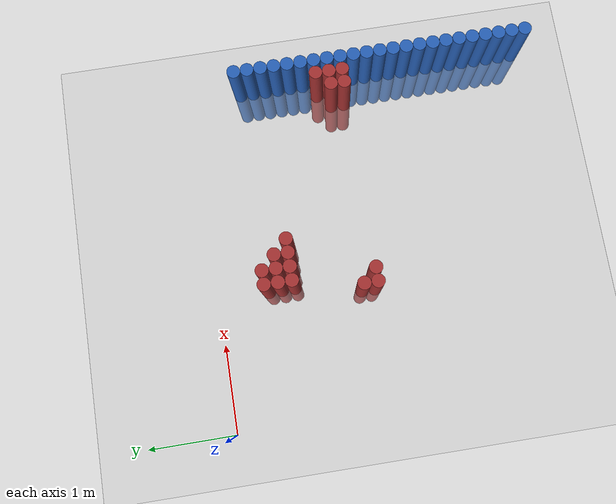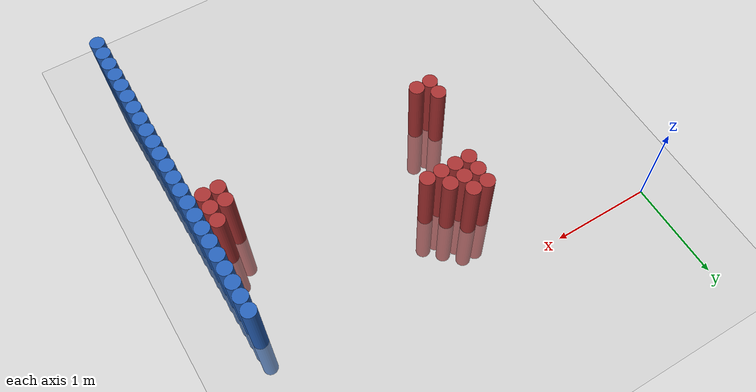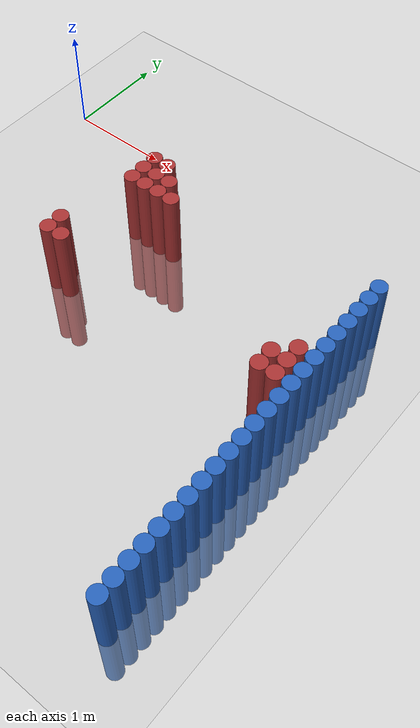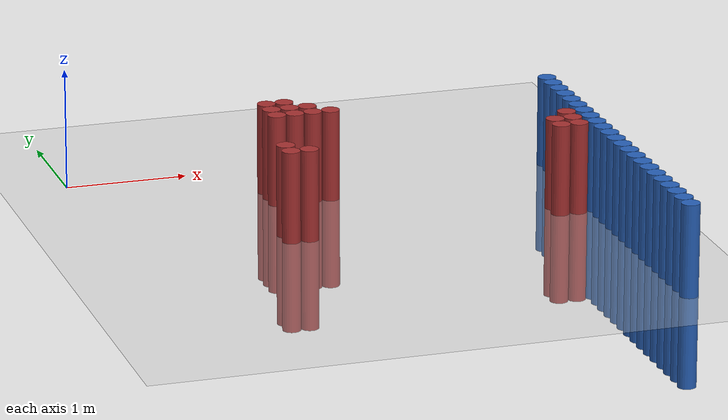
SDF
<sdf version="1.6">
 <world name="default">
  <model name="ground_plane">
   <static>1</static>
   <link name="link">
    <collision name="collision">
     <geometry><plane><normal>0 0 1</normal><size>100 100</size></plane></geometry>
     <surface><friction><ode><mu>100</mu><mu2>50</mu2></ode></friction></surface>
    </collision>
    <visual name="visual">
     <cast_shadows>0</cast_shadows>
     <geometry><plane><normal>0 0 1</normal><size>100 100</size></plane></geometry>
     <material>
      <script><uri>file://media/materials/scripts/gazebo.material</uri><name>Gazebo/Grey</name></script>
     </material>
    </visual>
   </link>
  </model>
  <model name="unit_cylinder_62">
   <static>1</static>
   <pose>3.925000 -3.875000 0.000000 0.000000 0.000000 0.000000</pose>
   <link name="link">
    <inertial>
     <mass>1</mass>
     <inertia><ixx>0.145833</ixx><ixy>0</ixy><ixz>0</ixz><iyy>0.145833</iyy><iyz>0</iyz><izz>0.125</izz></inertia>
    </inertial>
    <collision name="collision">
     <geometry><cylinder><radius>0.075000</radius><length>1.5</length></cylinder></geometry>
    </collision>
    <visual name="visual">
     <geometry><cylinder><radius>0.075000</radius><length>1.5</length></cylinder></geometry>
     <material>
      <ambient>0.152000 0.379000 0.720000 1</ambient>
      <diffuse>0.152000 0.379000 0.720000 1</diffuse>
     </material>
     <material>
      <script><name>Gazebo/Grey</name><uri>file://media/materials/scripts/gazebo.material</uri></script>
     </material>
    </visual>
   </link>
  </model>
  <model name="unit_cylinder_64">
   <static>1</static>
   <pose>3.925000 -3.725000 0.000000 0.000000 0.000000 0.000000</pose>
   <link name="link">
    <inertial>
     <mass>1</mass>
     <inertia><ixx>0.145833</ixx><ixy>0</ixy><ixz>0</ixz><iyy>0.145833</iyy><iyz>0</iyz><izz>0.125</izz></inertia>
    </inertial>
    <collision name="collision">
     <geometry><cylinder><radius>0.075000</radius><length>1.5</length></cylinder></geometry>
    </collision>
    <visual name="visual">
     <geometry><cylinder><radius>0.075000</radius><length>1.5</length></cylinder></geometry>
     <material>
      <ambient>0.152000 0.379000 0.720000 1</ambient>
      <diffuse>0.152000 0.379000 0.720000 1</diffuse>
     </material>
     <material>
      <script><name>Gazebo/Grey</name><uri>file://media/materials/scripts/gazebo.material</uri></script>
     </material>
    </visual>
   </link>
  </model>
  <model name="unit_cylinder_66">
   <static>1</static>
   <pose>3.925000 -3.575000 0.000000 0.000000 0.000000 0.000000</pose>
   <link name="link">
    <inertial>
     <mass>1</mass>
     <inertia><ixx>0.145833</ixx><ixy>0</ixy><ixz>0</ixz><iyy>0.145833</iyy><iyz>0</iyz><izz>0.125</izz></inertia>
    </inertial>
    <collision name="collision">
     <geometry><cylinder><radius>0.075000</radius><length>1.5</length></cylinder></geometry>
    </collision>
    <visual name="visual">
     <geometry><cylinder><radius>0.075000</radius><length>1.5</length></cylinder></geometry>
     <material>
      <ambient>0.152000 0.379000 0.720000 1</ambient>
      <diffuse>0.152000 0.379000 0.720000 1</diffuse>
     </material>
     <material>
      <script><name>Gazebo/Grey</name><uri>file://media/materials/scripts/gazebo.material</uri></script>
     </material>
    </visual>
   </link>
  </model>
  <model name="unit_cylinder_68">
   <static>1</static>
   <pose>3.925000 -3.425000 0.000000 0.000000 0.000000 0.000000</pose>
   <link name="link">
    <inertial>
     <mass>1</mass>
     <inertia><ixx>0.145833</ixx><ixy>0</ixy><ixz>0</ixz><iyy>0.145833</iyy><iyz>0</iyz><izz>0.125</izz></inertia>
    </inertial>
    <collision name="collision">
     <geometry><cylinder><radius>0.075000</radius><length>1.5</length></cylinder></geometry>
    </collision>
    <visual name="visual">
     <geometry><cylinder><radius>0.075000</radius><length>1.5</length></cylinder></geometry>
     <material>
      <ambient>0.152000 0.379000 0.720000 1</ambient>
      <diffuse>0.152000 0.379000 0.720000 1</diffuse>
     </material>
     <material>
      <script><name>Gazebo/Grey</name><uri>file://media/materials/scripts/gazebo.material</uri></script>
     </material>
    </visual>
   </link>
  </model>
  <model name="unit_cylinder_70">
   <static>1</static>
   <pose>3.925000 -3.275000 0.000000 0.000000 0.000000 0.000000</pose>
   <link name="link">
    <inertial>
     <mass>1</mass>
     <inertia><ixx>0.145833</ixx><ixy>0</ixy><ixz>0</ixz><iyy>0.145833</iyy><iyz>0</iyz><izz>0.125</izz></inertia>
    </inertial>
    <collision name="collision">
     <geometry><cylinder><radius>0.075000</radius><length>1.5</length></cylinder></geometry>
    </collision>
    <visual name="visual">
     <geometry><cylinder><radius>0.075000</radius><length>1.5</length></cylinder></geometry>
     <material>
      <ambient>0.152000 0.379000 0.720000 1</ambient>
      <diffuse>0.152000 0.379000 0.720000 1</diffuse>
     </material>
     <material>
      <script><name>Gazebo/Grey</name><uri>file://media/materials/scripts/gazebo.material</uri></script>
     </material>
    </visual>
   </link>
  </model>
  <model name="unit_cylinder_72">
   <static>1</static>
   <pose>3.925000 -3.125000 0.000000 0.000000 0.000000 0.000000</pose>
   <link name="link">
    <inertial>
     <mass>1</mass>
     <inertia><ixx>0.145833</ixx><ixy>0</ixy><ixz>0</ixz><iyy>0.145833</iyy><iyz>0</iyz><izz>0.125</izz></inertia>
    </inertial>
    <collision name="collision">
     <geometry><cylinder><radius>0.075000</radius><length>1.5</length></cylinder></geometry>
    </collision>
    <visual name="visual">
     <geometry><cylinder><radius>0.075000</radius><length>1.5</length></cylinder></geometry>
     <material>
      <ambient>0.152000 0.379000 0.720000 1</ambient>
      <diffuse>0.152000 0.379000 0.720000 1</diffuse>
     </material>
     <material>
      <script><name>Gazebo/Grey</name><uri>file://media/materials/scripts/gazebo.material</uri></script>
     </material>
    </visual>
   </link>
  </model>
  <model name="unit_cylinder_74">
   <static>1</static>
   <pose>3.925000 -2.975000 0.000000 0.000000 0.000000 0.000000</pose>
   <link name="link">
    <inertial>
     <mass>1</mass>
     <inertia><ixx>0.145833</ixx><ixy>0</ixy><ixz>0</ixz><iyy>0.145833</iyy><iyz>0</iyz><izz>0.125</izz></inertia>
    </inertial>
    <collision name="collision">
     <geometry><cylinder><radius>0.075000</radius><length>1.5</length></cylinder></geometry>
    </collision>
    <visual name="visual">
     <geometry><cylinder><radius>0.075000</radius><length>1.5</length></cylinder></geometry>
     <material>
      <ambient>0.152000 0.379000 0.720000 1</ambient>
      <diffuse>0.152000 0.379000 0.720000 1</diffuse>
     </material>
     <material>
      <script><name>Gazebo/Grey</name><uri>file://media/materials/scripts/gazebo.material</uri></script>
     </material>
    </visual>
   </link>
  </model>
  <model name="unit_cylinder_76">
   <static>1</static>
   <pose>3.925000 -2.825000 0.000000 0.000000 0.000000 0.000000</pose>
   <link name="link">
    <inertial>
     <mass>1</mass>
     <inertia><ixx>0.145833</ixx><ixy>0</ixy><ixz>0</ixz><iyy>0.145833</iyy><iyz>0</iyz><izz>0.125</izz></inertia>
    </inertial>
    <collision name="collision">
     <geometry><cylinder><radius>0.075000</radius><length>1.5</length></cylinder></geometry>
    </collision>
    <visual name="visual">
     <geometry><cylinder><radius>0.075000</radius><length>1.5</length></cylinder></geometry>
     <material>
      <ambient>0.152000 0.379000 0.720000 1</ambient>
      <diffuse>0.152000 0.379000 0.720000 1</diffuse>
     </material>
     <material>
      <script><name>Gazebo/Grey</name><uri>file://media/materials/scripts/gazebo.material</uri></script>
     </material>
    </visual>
   </link>
  </model>
  <model name="unit_cylinder_78">
   <static>1</static>
   <pose>3.925000 -2.675000 0.000000 0.000000 0.000000 0.000000</pose>
   <link name="link">
    <inertial>
     <mass>1</mass>
     <inertia><ixx>0.145833</ixx><ixy>0</ixy><ixz>0</ixz><iyy>0.145833</iyy><iyz>0</iyz><izz>0.125</izz></inertia>
    </inertial>
    <collision name="collision">
     <geometry><cylinder><radius>0.075000</radius><length>1.5</length></cylinder></geometry>
    </collision>
    <visual name="visual">
     <geometry><cylinder><radius>0.075000</radius><length>1.5</length></cylinder></geometry>
     <material>
      <ambient>0.152000 0.379000 0.720000 1</ambient>
      <diffuse>0.152000 0.379000 0.720000 1</diffuse>
     </material>
     <material>
      <script><name>Gazebo/Grey</name><uri>file://media/materials/scripts/gazebo.material</uri></script>
     </material>
    </visual>
   </link>
  </model>
  <model name="unit_cylinder_80">
   <static>1</static>
   <pose>3.925000 -2.525000 0.000000 0.000000 0.000000 0.000000</pose>
   <link name="link">
    <inertial>
     <mass>1</mass>
     <inertia><ixx>0.145833</ixx><ixy>0</ixy><ixz>0</ixz><iyy>0.145833</iyy><iyz>0</iyz><izz>0.125</izz></inertia>
    </inertial>
    <collision name="collision">
     <geometry><cylinder><radius>0.075000</radius><length>1.5</length></cylinder></geometry>
    </collision>
    <visual name="visual">
     <geometry><cylinder><radius>0.075000</radius><length>1.5</length></cylinder></geometry>
     <material>
      <ambient>0.152000 0.379000 0.720000 1</ambient>
      <diffuse>0.152000 0.379000 0.720000 1</diffuse>
     </material>
     <material>
      <script><name>Gazebo/Grey</name><uri>file://media/materials/scripts/gazebo.material</uri></script>
     </material>
    </visual>
   </link>
  </model>
  <model name="unit_cylinder_82">
   <static>1</static>
   <pose>3.925000 -2.375000 0.000000 0.000000 0.000000 0.000000</pose>
   <link name="link">
    <inertial>
     <mass>1</mass>
     <inertia><ixx>0.145833</ixx><ixy>0</ixy><ixz>0</ixz><iyy>0.145833</iyy><iyz>0</iyz><izz>0.125</izz></inertia>
    </inertial>
    <collision name="collision">
     <geometry><cylinder><radius>0.075000</radius><length>1.5</length></cylinder></geometry>
    </collision>
    <visual name="visual">
     <geometry><cylinder><radius>0.075000</radius><length>1.5</length></cylinder></geometry>
     <material>
      <ambient>0.152000 0.379000 0.720000 1</ambient>
      <diffuse>0.152000 0.379000 0.720000 1</diffuse>
     </material>
     <material>
      <script><name>Gazebo/Grey</name><uri>file://media/materials/scripts/gazebo.material</uri></script>
     </material>
    </visual>
   </link>
  </model>
  <model name="unit_cylinder_84">
   <static>1</static>
   <pose>3.925000 -2.225000 0.000000 0.000000 0.000000 0.000000</pose>
   <link name="link">
    <inertial>
     <mass>1</mass>
     <inertia><ixx>0.145833</ixx><ixy>0</ixy><ixz>0</ixz><iyy>0.145833</iyy><iyz>0</iyz><izz>0.125</izz></inertia>
    </inertial>
    <collision name="collision">
     <geometry><cylinder><radius>0.075000</radius><length>1.5</length></cylinder></geometry>
    </collision>
    <visual name="visual">
     <geometry><cylinder><radius>0.075000</radius><length>1.5</length></cylinder></geometry>
     <material>
      <ambient>0.152000 0.379000 0.720000 1</ambient>
      <diffuse>0.152000 0.379000 0.720000 1</diffuse>
     </material>
     <material>
      <script><name>Gazebo/Grey</name><uri>file://media/materials/scripts/gazebo.material</uri></script>
     </material>
    </visual>
   </link>
  </model>
  <model name="unit_cylinder_86">
   <static>1</static>
   <pose>3.925000 -2.075000 0.000000 0.000000 0.000000 0.000000</pose>
   <link name="link">
    <inertial>
     <mass>1</mass>
     <inertia><ixx>0.145833</ixx><ixy>0</ixy><ixz>0</ixz><iyy>0.145833</iyy><iyz>0</iyz><izz>0.125</izz></inertia>
    </inertial>
    <collision name="collision">
     <geometry><cylinder><radius>0.075000</radius><length>1.5</length></cylinder></geometry>
    </collision>
    <visual name="visual">
     <geometry><cylinder><radius>0.075000</radius><length>1.5</length></cylinder></geometry>
     <material>
      <ambient>0.152000 0.379000 0.720000 1</ambient>
      <diffuse>0.152000 0.379000 0.720000 1</diffuse>
     </material>
     <material>
      <script><name>Gazebo/Grey</name><uri>file://media/materials/scripts/gazebo.material</uri></script>
     </material>
    </visual>
   </link>
  </model>
  <model name="unit_cylinder_88">
   <static>1</static>
   <pose>3.925000 -1.925000 0.000000 0.000000 0.000000 0.000000</pose>
   <link name="link">
    <inertial>
     <mass>1</mass>
     <inertia><ixx>0.145833</ixx><ixy>0</ixy><ixz>0</ixz><iyy>0.145833</iyy><iyz>0</iyz><izz>0.125</izz></inertia>
    </inertial>
    <collision name="collision">
     <geometry><cylinder><radius>0.075000</radius><length>1.5</length></cylinder></geometry>
    </collision>
    <visual name="visual">
     <geometry><cylinder><radius>0.075000</radius><length>1.5</length></cylinder></geometry>
     <material>
      <ambient>0.152000 0.379000 0.720000 1</ambient>
      <diffuse>0.152000 0.379000 0.720000 1</diffuse>
     </material>
     <material>
      <script><name>Gazebo/Grey</name><uri>file://media/materials/scripts/gazebo.material</uri></script>
     </material>
    </visual>
   </link>
  </model>
  <model name="unit_cylinder_90">
   <static>1</static>
   <pose>3.925000 -1.775000 0.000000 0.000000 0.000000 0.000000</pose>
   <link name="link">
    <inertial>
     <mass>1</mass>
     <inertia><ixx>0.145833</ixx><ixy>0</ixy><ixz>0</ixz><iyy>0.145833</iyy><iyz>0</iyz><izz>0.125</izz></inertia>
    </inertial>
    <collision name="collision">
     <geometry><cylinder><radius>0.075000</radius><length>1.5</length></cylinder></geometry>
    </collision>
    <visual name="visual">
     <geometry><cylinder><radius>0.075000</radius><length>1.5</length></cylinder></geometry>
     <material>
      <ambient>0.152000 0.379000 0.720000 1</ambient>
      <diffuse>0.152000 0.379000 0.720000 1</diffuse>
     </material>
     <material>
      <script><name>Gazebo/Grey</name><uri>file://media/materials/scripts/gazebo.material</uri></script>
     </material>
    </visual>
   </link>
  </model>
  <model name="unit_cylinder_92">
   <static>1</static>
   <pose>3.925000 -1.625000 0.000000 0.000000 0.000000 0.000000</pose>
   <link name="link">
    <inertial>
     <mass>1</mass>
     <inertia><ixx>0.145833</ixx><ixy>0</ixy><ixz>0</ixz><iyy>0.145833</iyy><iyz>0</iyz><izz>0.125</izz></inertia>
    </inertial>
    <collision name="collision">
     <geometry><cylinder><radius>0.075000</radius><length>1.5</length></cylinder></geometry>
    </collision>
    <visual name="visual">
     <geometry><cylinder><radius>0.075000</radius><length>1.5</length></cylinder></geometry>
     <material>
      <ambient>0.152000 0.379000 0.720000 1</ambient>
      <diffuse>0.152000 0.379000 0.720000 1</diffuse>
     </material>
     <material>
      <script><name>Gazebo/Grey</name><uri>file://media/materials/scripts/gazebo.material</uri></script>
     </material>
    </visual>
   </link>
  </model>
  <model name="unit_cylinder_94">
   <static>1</static>
   <pose>3.925000 -1.475000 0.000000 0.000000 0.000000 0.000000</pose>
   <link name="link">
    <inertial>
     <mass>1</mass>
     <inertia><ixx>0.145833</ixx><ixy>0</ixy><ixz>0</ixz><iyy>0.145833</iyy><iyz>0</iyz><izz>0.125</izz></inertia>
    </inertial>
    <collision name="collision">
     <geometry><cylinder><radius>0.075000</radius><length>1.5</length></cylinder></geometry>
    </collision>
    <visual name="visual">
     <geometry><cylinder><radius>0.075000</radius><length>1.5</length></cylinder></geometry>
     <material>
      <ambient>0.152000 0.379000 0.720000 1</ambient>
      <diffuse>0.152000 0.379000 0.720000 1</diffuse>
     </material>
     <material>
      <script><name>Gazebo/Grey</name><uri>file://media/materials/scripts/gazebo.material</uri></script>
     </material>
    </visual>
   </link>
  </model>
  <model name="unit_cylinder_96">
   <static>1</static>
   <pose>3.925000 -1.325000 0.000000 0.000000 0.000000 0.000000</pose>
   <link name="link">
    <inertial>
     <mass>1</mass>
     <inertia><ixx>0.145833</ixx><ixy>0</ixy><ixz>0</ixz><iyy>0.145833</iyy><iyz>0</iyz><izz>0.125</izz></inertia>
    </inertial>
    <collision name="collision">
     <geometry><cylinder><radius>0.075000</radius><length>1.5</length></cylinder></geometry>
    </collision>
    <visual name="visual">
     <geometry><cylinder><radius>0.075000</radius><length>1.5</length></cylinder></geometry>
     <material>
      <ambient>0.152000 0.379000 0.720000 1</ambient>
      <diffuse>0.152000 0.379000 0.720000 1</diffuse>
     </material>
     <material>
      <script><name>Gazebo/Grey</name><uri>file://media/materials/scripts/gazebo.material</uri></script>
     </material>
    </visual>
   </link>
  </model>
  <model name="unit_cylinder_98">
   <static>1</static>
   <pose>3.925000 -1.175000 0.000000 0.000000 0.000000 0.000000</pose>
   <link name="link">
    <inertial>
     <mass>1</mass>
     <inertia><ixx>0.145833</ixx><ixy>0</ixy><ixz>0</ixz><iyy>0.145833</iyy><iyz>0</iyz><izz>0.125</izz></inertia>
    </inertial>
    <collision name="collision">
     <geometry><cylinder><radius>0.075000</radius><length>1.5</length></cylinder></geometry>
    </collision>
    <visual name="visual">
     <geometry><cylinder><radius>0.075000</radius><length>1.5</length></cylinder></geometry>
     <material>
      <ambient>0.152000 0.379000 0.720000 1</ambient>
      <diffuse>0.152000 0.379000 0.720000 1</diffuse>
     </material>
     <material>
      <script><name>Gazebo/Grey</name><uri>file://media/materials/scripts/gazebo.material</uri></script>
     </material>
    </visual>
   </link>
  </model>
  <model name="unit_cylinder_100">
   <static>1</static>
   <pose>3.925000 -1.025000 0.000000 0.000000 0.000000 0.000000</pose>
   <link name="link">
    <inertial>
     <mass>1</mass>
     <inertia><ixx>0.145833</ixx><ixy>0</ixy><ixz>0</ixz><iyy>0.145833</iyy><iyz>0</iyz><izz>0.125</izz></inertia>
    </inertial>
    <collision name="collision">
     <geometry><cylinder><radius>0.075000</radius><length>1.5</length></cylinder></geometry>
    </collision>
    <visual name="visual">
     <geometry><cylinder><radius>0.075000</radius><length>1.5</length></cylinder></geometry>
     <material>
      <ambient>0.152000 0.379000 0.720000 1</ambient>
      <diffuse>0.152000 0.379000 0.720000 1</diffuse>
     </material>
     <material>
      <script><name>Gazebo/Grey</name><uri>file://media/materials/scripts/gazebo.material</uri></script>
     </material>
    </visual>
   </link>
  </model>
  <model name="unit_cylinder_102">
   <static>1</static>
   <pose>3.925000 -0.875000 0.000000 0.000000 0.000000 0.000000</pose>
   <link name="link">
    <inertial>
     <mass>1</mass>
     <inertia><ixx>0.145833</ixx><ixy>0</ixy><ixz>0</ixz><iyy>0.145833</iyy><iyz>0</iyz><izz>0.125</izz></inertia>
    </inertial>
    <collision name="collision">
     <geometry><cylinder><radius>0.075000</radius><length>1.5</length></cylinder></geometry>
    </collision>
    <visual name="visual">
     <geometry><cylinder><radius>0.075000</radius><length>1.5</length></cylinder></geometry>
     <material>
      <ambient>0.152000 0.379000 0.720000 1</ambient>
      <diffuse>0.152000 0.379000 0.720000 1</diffuse>
     </material>
     <material>
      <script><name>Gazebo/Grey</name><uri>file://media/materials/scripts/gazebo.material</uri></script>
     </material>
    </visual>
   </link>
  </model>
  <model name="unit_cylinder_104">
   <static>1</static>
   <pose>3.925000 -0.725000 0.000000 0.000000 0.000000 0.000000</pose>
   <link name="link">
    <inertial>
     <mass>1</mass>
     <inertia><ixx>0.145833</ixx><ixy>0</ixy><ixz>0</ixz><iyy>0.145833</iyy><iyz>0</iyz><izz>0.125</izz></inertia>
    </inertial>
    <collision name="collision">
     <geometry><cylinder><radius>0.075000</radius><length>1.5</length></cylinder></geometry>
    </collision>
    <visual name="visual">
     <geometry><cylinder><radius>0.075000</radius><length>1.5</length></cylinder></geometry>
     <material>
      <ambient>0.152000 0.379000 0.720000 1</ambient>
      <diffuse>0.152000 0.379000 0.720000 1</diffuse>
     </material>
     <material>
      <script><name>Gazebo/Grey</name><uri>file://media/materials/scripts/gazebo.material</uri></script>
     </material>
    </visual>
   </link>
  </model>
  <model name="unit_cylinder_106">
   <static>1</static>
   <pose>3.925000 -0.575000 0.000000 0.000000 0.000000 0.000000</pose>
   <link name="link">
    <inertial>
     <mass>1</mass>
     <inertia><ixx>0.145833</ixx><ixy>0</ixy><ixz>0</ixz><iyy>0.145833</iyy><iyz>0</iyz><izz>0.125</izz></inertia>
    </inertial>
    <collision name="collision">
     <geometry><cylinder><radius>0.075000</radius><length>1.5</length></cylinder></geometry>
    </collision>
    <visual name="visual">
     <geometry><cylinder><radius>0.075000</radius><length>1.5</length></cylinder></geometry>
     <material>
      <ambient>0.152000 0.379000 0.720000 1</ambient>
      <diffuse>0.152000 0.379000 0.720000 1</diffuse>
     </material>
     <material>
      <script><name>Gazebo/Grey</name><uri>file://media/materials/scripts/gazebo.material</uri></script>
     </material>
    </visual>
   </link>
  </model>
  <model name="unit_cylinder_369">
   <static>1</static>
   <pose>1.375000 -1.775000 0.000000 0.000000 0.000000 0.000000</pose>
   <link name="link">
    <inertial>
     <mass>1</mass>
     <inertia><ixx>0.145833</ixx><ixy>0</ixy><ixz>0</ixz><iyy>0.145833</iyy><iyz>0</iyz><izz>0.125</izz></inertia>
    </inertial>
    <collision name="collision">
     <geometry><cylinder><radius>0.075000</radius><length>1.5</length></cylinder></geometry>
    </collision>
    <visual name="visual">
     <geometry><cylinder><radius>0.075000</radius><length>1.5</length></cylinder></geometry>
     <material>
      <ambient>0.648000 0.192000 0.192000 1</ambient>
      <diffuse>0.648000 0.192000 0.192000 1</diffuse>
     </material>
     <material>
      <script><name>Gazebo/Grey</name><uri>file://media/materials/scripts/gazebo.material</uri></script>
     </material>
    </visual>
   </link>
  </model>
  <model name="unit_cylinder_370">
   <static>1</static>
   <pose>1.375000 -1.625000 0.000000 0.000000 0.000000 0.000000</pose>
   <link name="link">
    <inertial>
     <mass>1</mass>
     <inertia><ixx>0.145833</ixx><ixy>0</ixy><ixz>0</ixz><iyy>0.145833</iyy><iyz>0</iyz><izz>0.125</izz></inertia>
    </inertial>
    <collision name="collision">
     <geometry><cylinder><radius>0.075000</radius><length>1.5</length></cylinder></geometry>
    </collision>
    <visual name="visual">
     <geometry><cylinder><radius>0.075000</radius><length>1.5</length></cylinder></geometry>
     <material>
      <ambient>0.648000 0.192000 0.192000 1</ambient>
      <diffuse>0.648000 0.192000 0.192000 1</diffuse>
     </material>
     <material>
      <script><name>Gazebo/Grey</name><uri>file://media/materials/scripts/gazebo.material</uri></script>
     </material>
    </visual>
   </link>
  </model>
  <model name="unit_cylinder_371">
   <static>1</static>
   <pose>1.525000 -1.775000 0.000000 0.000000 0.000000 0.000000</pose>
   <link name="link">
    <inertial>
     <mass>1</mass>
     <inertia><ixx>0.145833</ixx><ixy>0</ixy><ixz>0</ixz><iyy>0.145833</iyy><iyz>0</iyz><izz>0.125</izz></inertia>
    </inertial>
    <collision name="collision">
     <geometry><cylinder><radius>0.075000</radius><length>1.5</length></cylinder></geometry>
    </collision>
    <visual name="visual">
     <geometry><cylinder><radius>0.075000</radius><length>1.5</length></cylinder></geometry>
     <material>
      <ambient>0.648000 0.192000 0.192000 1</ambient>
      <diffuse>0.648000 0.192000 0.192000 1</diffuse>
     </material>
     <material>
      <script><name>Gazebo/Grey</name><uri>file://media/materials/scripts/gazebo.material</uri></script>
     </material>
    </visual>
   </link>
  </model>
  <model name="unit_cylinder_372">
   <static>1</static>
   <pose>1.525000 -0.875000 0.000000 0.000000 0.000000 0.000000</pose>
   <link name="link">
    <inertial>
     <mass>1</mass>
     <inertia><ixx>0.145833</ixx><ixy>0</ixy><ixz>0</ixz><iyy>0.145833</iyy><iyz>0</iyz><izz>0.125</izz></inertia>
    </inertial>
    <collision name="collision">
     <geometry><cylinder><radius>0.075000</radius><length>1.5</length></cylinder></geometry>
    </collision>
    <visual name="visual">
     <geometry><cylinder><radius>0.075000</radius><length>1.5</length></cylinder></geometry>
     <material>
      <ambient>0.648000 0.192000 0.192000 1</ambient>
      <diffuse>0.648000 0.192000 0.192000 1</diffuse>
     </material>
     <material>
      <script><name>Gazebo/Grey</name><uri>file://media/materials/scripts/gazebo.material</uri></script>
     </material>
    </visual>
   </link>
  </model>
  <model name="unit_cylinder_373">
   <static>1</static>
   <pose>1.525000 -0.725000 0.000000 0.000000 0.000000 0.000000</pose>
   <link name="link">
    <inertial>
     <mass>1</mass>
     <inertia><ixx>0.145833</ixx><ixy>0</ixy><ixz>0</ixz><iyy>0.145833</iyy><iyz>0</iyz><izz>0.125</izz></inertia>
    </inertial>
    <collision name="collision">
     <geometry><cylinder><radius>0.075000</radius><length>1.5</length></cylinder></geometry>
    </collision>
    <visual name="visual">
     <geometry><cylinder><radius>0.075000</radius><length>1.5</length></cylinder></geometry>
     <material>
      <ambient>0.648000 0.192000 0.192000 1</ambient>
      <diffuse>0.648000 0.192000 0.192000 1</diffuse>
     </material>
     <material>
      <script><name>Gazebo/Grey</name><uri>file://media/materials/scripts/gazebo.material</uri></script>
     </material>
    </visual>
   </link>
  </model>
  <model name="unit_cylinder_374">
   <static>1</static>
   <pose>1.525000 -0.575000 0.000000 0.000000 0.000000 0.000000</pose>
   <link name="link">
    <inertial>
     <mass>1</mass>
     <inertia><ixx>0.145833</ixx><ixy>0</ixy><ixz>0</ixz><iyy>0.145833</iyy><iyz>0</iyz><izz>0.125</izz></inertia>
    </inertial>
    <collision name="collision">
     <geometry><cylinder><radius>0.075000</radius><length>1.5</length></cylinder></geometry>
    </collision>
    <visual name="visual">
     <geometry><cylinder><radius>0.075000</radius><length>1.5</length></cylinder></geometry>
     <material>
      <ambient>0.648000 0.192000 0.192000 1</ambient>
      <diffuse>0.648000 0.192000 0.192000 1</diffuse>
     </material>
     <material>
      <script><name>Gazebo/Grey</name><uri>file://media/materials/scripts/gazebo.material</uri></script>
     </material>
    </visual>
   </link>
  </model>
  <model name="unit_cylinder_377">
   <static>1</static>
   <pose>1.675000 -0.875000 0.000000 0.000000 0.000000 0.000000</pose>
   <link name="link">
    <inertial>
     <mass>1</mass>
     <inertia><ixx>0.145833</ixx><ixy>0</ixy><ixz>0</ixz><iyy>0.145833</iyy><iyz>0</iyz><izz>0.125</izz></inertia>
    </inertial>
    <collision name="collision">
     <geometry><cylinder><radius>0.075000</radius><length>1.5</length></cylinder></geometry>
    </collision>
    <visual name="visual">
     <geometry><cylinder><radius>0.075000</radius><length>1.5</length></cylinder></geometry>
     <material>
      <ambient>0.648000 0.192000 0.192000 1</ambient>
      <diffuse>0.648000 0.192000 0.192000 1</diffuse>
     </material>
     <material>
      <script><name>Gazebo/Grey</name><uri>file://media/materials/scripts/gazebo.material</uri></script>
     </material>
    </visual>
   </link>
  </model>
  <model name="unit_cylinder_378">
   <static>1</static>
   <pose>1.675000 -0.725000 0.000000 0.000000 0.000000 0.000000</pose>
   <link name="link">
    <inertial>
     <mass>1</mass>
     <inertia><ixx>0.145833</ixx><ixy>0</ixy><ixz>0</ixz><iyy>0.145833</iyy><iyz>0</iyz><izz>0.125</izz></inertia>
    </inertial>
    <collision name="collision">
     <geometry><cylinder><radius>0.075000</radius><length>1.5</length></cylinder></geometry>
    </collision>
    <visual name="visual">
     <geometry><cylinder><radius>0.075000</radius><length>1.5</length></cylinder></geometry>
     <material>
      <ambient>0.648000 0.192000 0.192000 1</ambient>
      <diffuse>0.648000 0.192000 0.192000 1</diffuse>
     </material>
     <material>
      <script><name>Gazebo/Grey</name><uri>file://media/materials/scripts/gazebo.material</uri></script>
     </material>
    </visual>
   </link>
  </model>
  <model name="unit_cylinder_379">
   <static>1</static>
   <pose>1.675000 -0.575000 0.000000 0.000000 0.000000 0.000000</pose>
   <link name="link">
    <inertial>
     <mass>1</mass>
     <inertia><ixx>0.145833</ixx><ixy>0</ixy><ixz>0</ixz><iyy>0.145833</iyy><iyz>0</iyz><izz>0.125</izz></inertia>
    </inertial>
    <collision name="collision">
     <geometry><cylinder><radius>0.075000</radius><length>1.5</length></cylinder></geometry>
    </collision>
    <visual name="visual">
     <geometry><cylinder><radius>0.075000</radius><length>1.5</length></cylinder></geometry>
     <material>
      <ambient>0.648000 0.192000 0.192000 1</ambient>
      <diffuse>0.648000 0.192000 0.192000 1</diffuse>
     </material>
     <material>
      <script><name>Gazebo/Grey</name><uri>file://media/materials/scripts/gazebo.material</uri></script>
     </material>
    </visual>
   </link>
  </model>
  <model name="unit_cylinder_382">
   <static>1</static>
   <pose>1.825000 -0.875000 0.000000 0.000000 0.000000 0.000000</pose>
   <link name="link">
    <inertial>
     <mass>1</mass>
     <inertia><ixx>0.145833</ixx><ixy>0</ixy><ixz>0</ixz><iyy>0.145833</iyy><iyz>0</iyz><izz>0.125</izz></inertia>
    </inertial>
    <collision name="collision">
     <geometry><cylinder><radius>0.075000</radius><length>1.5</length></cylinder></geometry>
    </collision>
    <visual name="visual">
     <geometry><cylinder><radius>0.075000</radius><length>1.5</length></cylinder></geometry>
     <material>
      <ambient>0.648000 0.192000 0.192000 1</ambient>
      <diffuse>0.648000 0.192000 0.192000 1</diffuse>
     </material>
     <material>
      <script><name>Gazebo/Grey</name><uri>file://media/materials/scripts/gazebo.material</uri></script>
     </material>
    </visual>
   </link>
  </model>
  <model name="unit_cylinder_383">
   <static>1</static>
   <pose>1.825000 -0.725000 0.000000 0.000000 0.000000 0.000000</pose>
   <link name="link">
    <inertial>
     <mass>1</mass>
     <inertia><ixx>0.145833</ixx><ixy>0</ixy><ixz>0</ixz><iyy>0.145833</iyy><iyz>0</iyz><izz>0.125</izz></inertia>
    </inertial>
    <collision name="collision">
     <geometry><cylinder><radius>0.075000</radius><length>1.5</length></cylinder></geometry>
    </collision>
    <visual name="visual">
     <geometry><cylinder><radius>0.075000</radius><length>1.5</length></cylinder></geometry>
     <material>
      <ambient>0.648000 0.192000 0.192000 1</ambient>
      <diffuse>0.648000 0.192000 0.192000 1</diffuse>
     </material>
     <material>
      <script><name>Gazebo/Grey</name><uri>file://media/materials/scripts/gazebo.material</uri></script>
     </material>
    </visual>
   </link>
  </model>
  <model name="unit_cylinder_387">
   <static>1</static>
   <pose>1.975000 -0.875000 0.000000 0.000000 0.000000 0.000000</pose>
   <link name="link">
    <inertial>
     <mass>1</mass>
     <inertia><ixx>0.145833</ixx><ixy>0</ixy><ixz>0</ixz><iyy>0.145833</iyy><iyz>0</iyz><izz>0.125</izz></inertia>
    </inertial>
    <collision name="collision">
     <geometry><cylinder><radius>0.075000</radius><length>1.5</length></cylinder></geometry>
    </collision>
    <visual name="visual">
     <geometry><cylinder><radius>0.075000</radius><length>1.5</length></cylinder></geometry>
     <material>
      <ambient>0.648000 0.192000 0.192000 1</ambient>
      <diffuse>0.648000 0.192000 0.192000 1</diffuse>
     </material>
     <material>
      <script><name>Gazebo/Grey</name><uri>file://media/materials/scripts/gazebo.material</uri></script>
     </material>
    </visual>
   </link>
  </model>
  <model name="unit_cylinder_416">
   <static>1</static>
   <pose>3.625000 -1.775000 0.000000 0.000000 0.000000 0.000000</pose>
   <link name="link">
    <inertial>
     <mass>1</mass>
     <inertia><ixx>0.145833</ixx><ixy>0</ixy><ixz>0</ixz><iyy>0.145833</iyy><iyz>0</iyz><izz>0.125</izz></inertia>
    </inertial>
    <collision name="collision">
     <geometry><cylinder><radius>0.075000</radius><length>1.5</length></cylinder></geometry>
    </collision>
    <visual name="visual">
     <geometry><cylinder><radius>0.075000</radius><length>1.5</length></cylinder></geometry>
     <material>
      <ambient>0.648000 0.192000 0.192000 1</ambient>
      <diffuse>0.648000 0.192000 0.192000 1</diffuse>
     </material>
     <material>
      <script><name>Gazebo/Grey</name><uri>file://media/materials/scripts/gazebo.material</uri></script>
     </material>
    </visual>
   </link>
  </model>
  <model name="unit_cylinder_417">
   <static>1</static>
   <pose>3.625000 -1.625000 0.000000 0.000000 0.000000 0.000000</pose>
   <link name="link">
    <inertial>
     <mass>1</mass>
     <inertia><ixx>0.145833</ixx><ixy>0</ixy><ixz>0</ixz><iyy>0.145833</iyy><iyz>0</iyz><izz>0.125</izz></inertia>
    </inertial>
    <collision name="collision">
     <geometry><cylinder><radius>0.075000</radius><length>1.5</length></cylinder></geometry>
    </collision>
    <visual name="visual">
     <geometry><cylinder><radius>0.075000</radius><length>1.5</length></cylinder></geometry>
     <material>
      <ambient>0.648000 0.192000 0.192000 1</ambient>
      <diffuse>0.648000 0.192000 0.192000 1</diffuse>
     </material>
     <material>
      <script><name>Gazebo/Grey</name><uri>file://media/materials/scripts/gazebo.material</uri></script>
     </material>
    </visual>
   </link>
  </model>
  <model name="unit_cylinder_424">
   <static>1</static>
   <pose>3.775000 -1.775000 0.000000 0.000000 0.000000 0.000000</pose>
   <link name="link">
    <inertial>
     <mass>1</mass>
     <inertia><ixx>0.145833</ixx><ixy>0</ixy><ixz>0</ixz><iyy>0.145833</iyy><iyz>0</iyz><izz>0.125</izz></inertia>
    </inertial>
    <collision name="collision">
     <geometry><cylinder><radius>0.075000</radius><length>1.5</length></cylinder></geometry>
    </collision>
    <visual name="visual">
     <geometry><cylinder><radius>0.075000</radius><length>1.5</length></cylinder></geometry>
     <material>
      <ambient>0.648000 0.192000 0.192000 1</ambient>
      <diffuse>0.648000 0.192000 0.192000 1</diffuse>
     </material>
     <material>
      <script><name>Gazebo/Grey</name><uri>file://media/materials/scripts/gazebo.material</uri></script>
     </material>
    </visual>
   </link>
  </model>
  <model name="unit_cylinder_425">
   <static>1</static>
   <pose>3.775000 -1.625000 0.000000 0.000000 0.000000 0.000000</pose>
   <link name="link">
    <inertial>
     <mass>1</mass>
     <inertia><ixx>0.145833</ixx><ixy>0</ixy><ixz>0</ixz><iyy>0.145833</iyy><iyz>0</iyz><izz>0.125</izz></inertia>
    </inertial>
    <collision name="collision">
     <geometry><cylinder><radius>0.075000</radius><length>1.5</length></cylinder></geometry>
    </collision>
    <visual name="visual">
     <geometry><cylinder><radius>0.075000</radius><length>1.5</length></cylinder></geometry>
     <material>
      <ambient>0.648000 0.192000 0.192000 1</ambient>
      <diffuse>0.648000 0.192000 0.192000 1</diffuse>
     </material>
     <material>
      <script><name>Gazebo/Grey</name><uri>file://media/materials/scripts/gazebo.material</uri></script>
     </material>
    </visual>
   </link>
  </model>
  <model name="unit_cylinder_426">
   <static>1</static>
   <pose>3.775000 -1.475000 0.000000 0.000000 0.000000 0.000000</pose>
   <link name="link">
    <inertial>
     <mass>1</mass>
     <inertia><ixx>0.145833</ixx><ixy>0</ixy><ixz>0</ixz><iyy>0.145833</iyy><iyz>0</iyz><izz>0.125</izz></inertia>
    </inertial>
    <collision name="collision">
     <geometry><cylinder><radius>0.075000</radius><length>1.5</length></cylinder></geometry>
    </collision>
    <visual name="visual">
     <geometry><cylinder><radius>0.075000</radius><length>1.5</length></cylinder></geometry>
     <material>
      <ambient>0.648000 0.192000 0.192000 1</ambient>
      <diffuse>0.648000 0.192000 0.192000 1</diffuse>
     </material>
     <material>
      <script><name>Gazebo/Grey</name><uri>file://media/materials/scripts/gazebo.material</uri></script>
     </material>
    </visual>
   </link>
  </model>
  <model name="unit_cylinder_444">
   <static>1</static>
   <pose>3.925000 -1.925000 0.000000 0.000000 0.000000 0.000000</pose>
   <link name="link">
    <inertial>
     <mass>1</mass>
     <inertia><ixx>0.145833</ixx><ixy>0</ixy><ixz>0</ixz><iyy>0.145833</iyy><iyz>0</iyz><izz>0.125</izz></inertia>
    </inertial>
    <collision name="collision">
     <geometry><cylinder><radius>0.075000</radius><length>1.5</length></cylinder></geometry>
    </collision>
    <visual name="visual">
     <geometry><cylinder><radius>0.075000</radius><length>1.5</length></cylinder></geometry>
     <material>
      <ambient>0.152000 0.379000 0.720000 1</ambient>
      <diffuse>0.152000 0.379000 0.720000 1</diffuse>
     </material>
     <material>
      <script><name>Gazebo/Grey</name><uri>file://media/materials/scripts/gazebo.material</uri></script>
     </material>
    </visual>
   </link>
  </model>
  <model name="unit_cylinder_445">
   <static>1</static>
   <pose>3.925000 -1.775000 0.000000 0.000000 0.000000 0.000000</pose>
   <link name="link">
    <inertial>
     <mass>1</mass>
     <inertia><ixx>0.145833</ixx><ixy>0</ixy><ixz>0</ixz><iyy>0.145833</iyy><iyz>0</iyz><izz>0.125</izz></inertia>
    </inertial>
    <collision name="collision">
     <geometry><cylinder><radius>0.075000</radius><length>1.5</length></cylinder></geometry>
    </collision>
    <visual name="visual">
     <geometry><cylinder><radius>0.075000</radius><length>1.5</length></cylinder></geometry>
     <material>
      <ambient>0.152000 0.379000 0.720000 1</ambient>
      <diffuse>0.152000 0.379000 0.720000 1</diffuse>
     </material>
     <material>
      <script><name>Gazebo/Grey</name><uri>file://media/materials/scripts/gazebo.material</uri></script>
     </material>
    </visual>
   </link>
  </model>
  <model name="unit_cylinder_446">
   <static>1</static>
   <pose>3.925000 -1.625000 0.000000 0.000000 0.000000 0.000000</pose>
   <link name="link">
    <inertial>
     <mass>1</mass>
     <inertia><ixx>0.145833</ixx><ixy>0</ixy><ixz>0</ixz><iyy>0.145833</iyy><iyz>0</iyz><izz>0.125</izz></inertia>
    </inertial>
    <collision name="collision">
     <geometry><cylinder><radius>0.075000</radius><length>1.5</length></cylinder></geometry>
    </collision>
    <visual name="visual">
     <geometry><cylinder><radius>0.075000</radius><length>1.5</length></cylinder></geometry>
     <material>
      <ambient>0.152000 0.379000 0.720000 1</ambient>
      <diffuse>0.152000 0.379000 0.720000 1</diffuse>
     </material>
     <material>
      <script><name>Gazebo/Grey</name><uri>file://media/materials/scripts/gazebo.material</uri></script>
     </material>
    </visual>
   </link>
  </model>
  <model name="unit_cylinder_447">
   <static>1</static>
   <pose>3.925000 -1.475000 0.000000 0.000000 0.000000 0.000000</pose>
   <link name="link">
    <inertial>
     <mass>1</mass>
     <inertia><ixx>0.145833</ixx><ixy>0</ixy><ixz>0</ixz><iyy>0.145833</iyy><iyz>0</iyz><izz>0.125</izz></inertia>
    </inertial>
    <collision name="collision">
     <geometry><cylinder><radius>0.075000</radius><length>1.5</length></cylinder></geometry>
    </collision>
    <visual name="visual">
     <geometry><cylinder><radius>0.075000</radius><length>1.5</length></cylinder></geometry>
     <material>
      <ambient>0.152000 0.379000 0.720000 1</ambient>
      <diffuse>0.152000 0.379000 0.720000 1</diffuse>
     </material>
     <material>
      <script><name>Gazebo/Grey</name><uri>file://media/materials/scripts/gazebo.material</uri></script>
     </material>
    </visual>
   </link>
  </model>
  <model name="unit_cylinder_448">
   <static>1</static>
   <pose>3.925000 -1.325000 0.000000 0.000000 0.000000 0.000000</pose>
   <link name="link">
    <inertial>
     <mass>1</mass>
     <inertia><ixx>0.145833</ixx><ixy>0</ixy><ixz>0</ixz><iyy>0.145833</iyy><iyz>0</iyz><izz>0.125</izz></inertia>
    </inertial>
    <collision name="collision">
     <geometry><cylinder><radius>0.075000</radius><length>1.5</length></cylinder></geometry>
    </collision>
    <visual name="visual">
     <geometry><cylinder><radius>0.075000</radius><length>1.5</length></cylinder></geometry>
     <material>
      <ambient>0.152000 0.379000 0.720000 1</ambient>
      <diffuse>0.152000 0.379000 0.720000 1</diffuse>
     </material>
     <material>
      <script><name>Gazebo/Grey</name><uri>file://media/materials/scripts/gazebo.material</uri></script>
     </material>
    </visual>
   </link>
  </model>
  <model name="unit_cylinder_449">
   <static>1</static>
   <pose>3.925000 -1.175000 0.000000 0.000000 0.000000 0.000000</pose>
   <link name="link">
    <inertial>
     <mass>1</mass>
     <inertia><ixx>0.145833</ixx><ixy>0</ixy><ixz>0</ixz><iyy>0.145833</iyy><iyz>0</iyz><izz>0.125</izz></inertia>
    </inertial>
    <collision name="collision">
     <geometry><cylinder><radius>0.075000</radius><length>1.5</length></cylinder></geometry>
    </collision>
    <visual name="visual">
     <geometry><cylinder><radius>0.075000</radius><length>1.5</length></cylinder></geometry>
     <material>
      <ambient>0.152000 0.379000 0.720000 1</ambient>
      <diffuse>0.152000 0.379000 0.720000 1</diffuse>
     </material>
     <material>
      <script><name>Gazebo/Grey</name><uri>file://media/materials/scripts/gazebo.material</uri></script>
     </material>
    </visual>
   </link>
  </model>
  <model name="unit_cylinder_450">
   <static>1</static>
   <pose>3.925000 -1.025000 0.000000 0.000000 0.000000 0.000000</pose>
   <link name="link">
    <inertial>
     <mass>1</mass>
     <inertia><ixx>0.145833</ixx><ixy>0</ixy><ixz>0</ixz><iyy>0.145833</iyy><iyz>0</iyz><izz>0.125</izz></inertia>
    </inertial>
    <collision name="collision">
     <geometry><cylinder><radius>0.075000</radius><length>1.5</length></cylinder></geometry>
    </collision>
    <visual name="visual">
     <geometry><cylinder><radius>0.075000</radius><length>1.5</length></cylinder></geometry>
     <material>
      <ambient>0.152000 0.379000 0.720000 1</ambient>
      <diffuse>0.152000 0.379000 0.720000 1</diffuse>
     </material>
     <material>
      <script><name>Gazebo/Grey</name><uri>file://media/materials/scripts/gazebo.material</uri></script>
     </material>
    </visual>
   </link>
  </model>
  <model name="unit_cylinder_451">
   <static>1</static>
   <pose>3.925000 -0.875000 0.000000 0.000000 0.000000 0.000000</pose>
   <link name="link">
    <inertial>
     <mass>1</mass>
     <inertia><ixx>0.145833</ixx><ixy>0</ixy><ixz>0</ixz><iyy>0.145833</iyy><iyz>0</iyz><izz>0.125</izz></inertia>
    </inertial>
    <collision name="collision">
     <geometry><cylinder><radius>0.075000</radius><length>1.5</length></cylinder></geometry>
    </collision>
    <visual name="visual">
     <geometry><cylinder><radius>0.075000</radius><length>1.5</length></cylinder></geometry>
     <material>
      <ambient>0.152000 0.379000 0.720000 1</ambient>
      <diffuse>0.152000 0.379000 0.720000 1</diffuse>
     </material>
     <material>
      <script><name>Gazebo/Grey</name><uri>file://media/materials/scripts/gazebo.material</uri></script>
     </material>
    </visual>
   </link>
  </model>
  <model name="unit_cylinder_452">
   <static>1</static>
   <pose>3.925000 -0.725000 0.000000 0.000000 0.000000 0.000000</pose>
   <link name="link">
    <inertial>
     <mass>1</mass>
     <inertia><ixx>0.145833</ixx><ixy>0</ixy><ixz>0</ixz><iyy>0.145833</iyy><iyz>0</iyz><izz>0.125</izz></inertia>
    </inertial>
    <collision name="collision">
     <geometry><cylinder><radius>0.075000</radius><length>1.5</length></cylinder></geometry>
    </collision>
    <visual name="visual">
     <geometry><cylinder><radius>0.075000</radius><length>1.5</length></cylinder></geometry>
     <material>
      <ambient>0.152000 0.379000 0.720000 1</ambient>
      <diffuse>0.152000 0.379000 0.720000 1</diffuse>
     </material>
     <material>
      <script><name>Gazebo/Grey</name><uri>file://media/materials/scripts/gazebo.material</uri></script>
     </material>
    </visual>
   </link>
  </model>
 </world>
</sdf>
